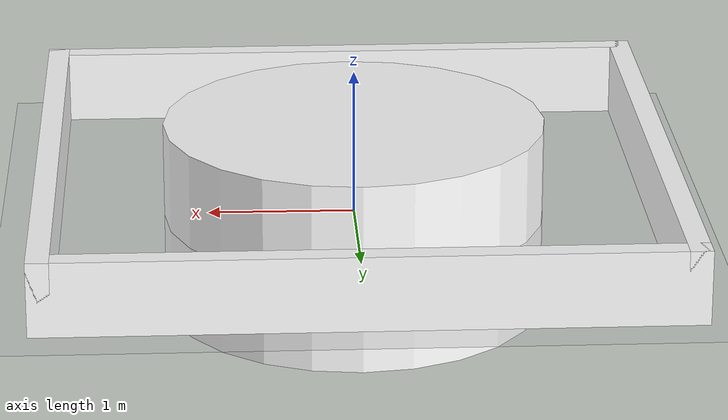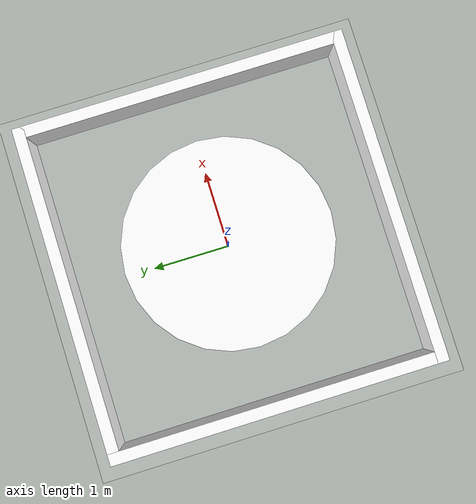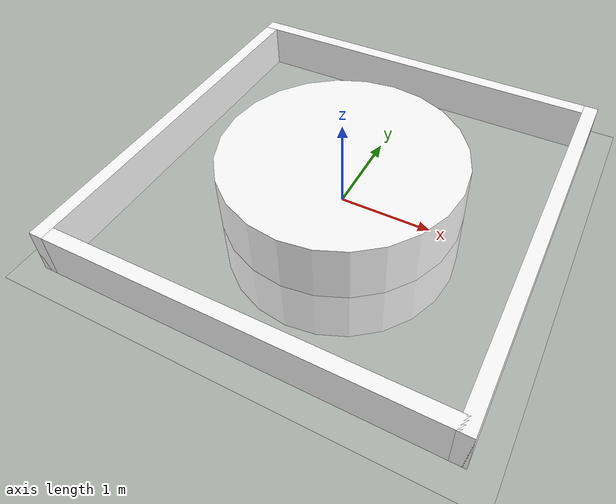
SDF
<sdf version='1.6'>
  <world name='default'>
    <!-- A global light source -->
    <include>
      <uri>model://sun</uri>
    </include>

    <!-- A ground plane -->
    <include>
      <uri>model://ground_plane</uri>
    </include>

    <physics type="ode">
      <real_time_update_rate>100.0</real_time_update_rate>
      <max_step_size>0.01</max_step_size>
      <real_time_factor>0.5</real_time_factor>
      <ode>
        <solver>
          <type>quick</type>
          <iters>150</iters>
          <precon_iters>0</precon_iters>
          <sor>1.400000</sor>
          <use_dynamic_moi_rescaling>1</use_dynamic_moi_rescaling>
        </solver>
        <constraints>
          <cfm>0.00001</cfm>
          <erp>0.2</erp>
          <contact_max_correcting_vel>2000.000000</contact_max_correcting_vel>
          <contact_surface_layer>0.01000</contact_surface_layer>
        </constraints>
      </ode>
    </physics>

    <!-- Load world -->
    <include>
      <uri>model://Smooth_turn</uri>
    </include>

    <scene>
      <ambient>0.4 0.4 0.4 1</ambient>
      <background>0.7 0.7 0.7 1</background>
      <shadows>false</shadows>
    </scene>

    <gui fullscreen='0'>
      <camera name='user_camera'>
        <pose>0.8 0.0 12.0 0 1.5708 0</pose>
        <view_controller>orbit</view_controller>
      </camera>
    </gui>
  </world>
</sdf>

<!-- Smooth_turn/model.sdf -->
<sdf version='1.5'>
  <model name='Smooth_turn'>
    <link name='fixed'></link>
    <pose frame=''>0 0 0 0 -0 0</pose>
    <link name='Wall_0'>
      <collision name='Wall_0_Collision'>
        <geometry>
          <box>
            <size>4.3 0.15 0.5</size>
          </box>
        </geometry>
        <pose frame=''>0 0 0.25 0 -0 0</pose>
      </collision>
      <visual name='Wall_0_Visual'>
        <pose frame=''>0 0 0.25 0 -0 0</pose>
        <geometry>
          <box>
            <size>4.3 0.15 0.5</size>
          </box>
        </geometry>
        <material>
          <ambient>1 1 1 1</ambient>
        </material>
      </visual>
      <pose frame=''>0 2.075 0 0 -0 0</pose>
    </link>
    <link name='Wall_2'>
      <collision name='Wall_2_Collision'>
        <geometry>
          <box>
            <size>4.3 0.15 0.5</size>
          </box>
        </geometry>
        <pose frame=''>0 0 0.25 0 -0 0</pose>
      </collision>
      <visual name='Wall_2_Visual'>
        <pose frame=''>0 0 0.25 0 -0 0</pose>
        <geometry>
          <box>
            <size>4.3 0.15 0.5</size>
          </box>
        </geometry>
        <material>
          <ambient>1 1 1 1</ambient>
        </material>
      </visual>
      <pose frame=''>-2.075 0 0 0 0 -1.5708</pose>
    </link>
    <link name='Wall_3'>
      <collision name='Wall_3_Collision'>
        <geometry>
          <box>
            <size>4.3 0.15 0.5</size>
          </box>
        </geometry>
        <pose frame=''>0 0 0.25 0 -0 0</pose>
      </collision>
      <visual name='Wall_3_Visual'>
        <pose frame=''>0 0 0.25 0 -0 0</pose>
        <geometry>
          <box>
            <size>4.3 0.15 0.5</size>
          </box>
        </geometry>
        <material>
          <ambient>1 1 1 1</ambient>
        </material>
      </visual>
      <pose frame=''>0 -2.075 0 0 -0 0</pose>
    </link>
    <link name='Wall_4'>
      <collision name='Wall_4_Collision'>
        <geometry>
          <box>
            <size>4.3 0.15 0.5</size>
          </box>
        </geometry>
        <pose frame=''>0 0 0.25 0 -0 0</pose>
      </collision>
      <visual name='Wall_4_Visual'>
        <pose frame=''>0 0 0.25 0 -0 0</pose>
        <geometry>
          <box>
            <size>4.3 0.15 0.5</size>
          </box>
        </geometry>
        <material>
          <ambient>1 1 1 1</ambient>
        </material>
      </visual>
      <pose frame=''>2.075 0 0 0 -0 1.5708</pose>
    </link>
    <link name='Cylinder_1'>
      <collision name='Cylinder_1_Collision'>
        <geometry>
          <cylinder>
            <radius>1.3</radius>
            <length>1.3</length>
          </cylinder>
        </geometry>
        <pose frame=''>0 0 0 0 -0 0</pose>
      </collision>
      <visual name='Cylinder_1_Visual'>
        <pose frame=''>0 0 0 0 -0 0</pose>
        <geometry>
          <cylinder>
            <radius>1.3</radius>
            <length>1.3</length>
          </cylinder>
        </geometry>
        <material>
          <ambient>1 1 1 1</ambient>
        </material>
      </visual>
      <pose frame=''>0 0 0 0 0 0</pose>
    </link>
    <pose frame=''>0 0 0 0 -0 0</pose>
    <static>1</static>
    <allow_auto_disable>1</allow_auto_disable>
  </model>
</sdf>
